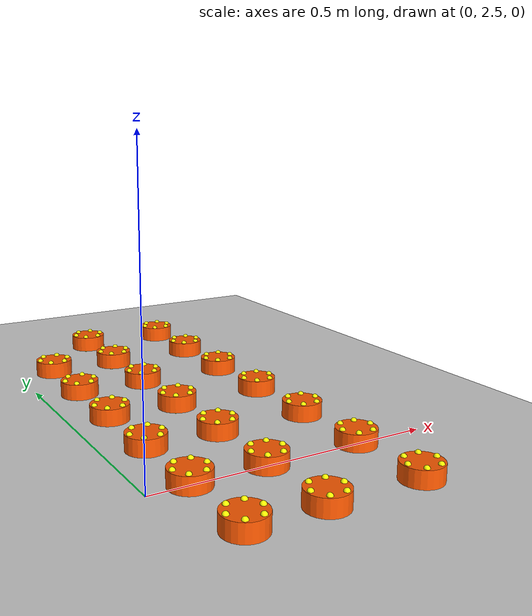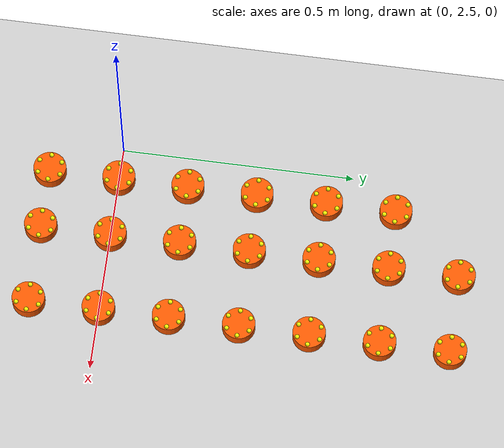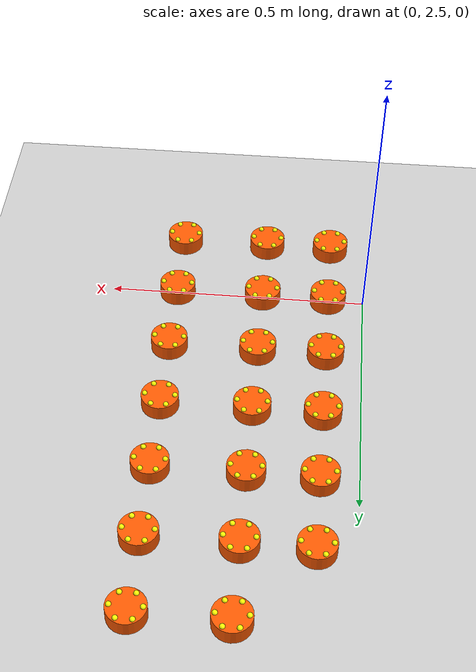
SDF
<sdf version="1.4">
 <world name="LLSF">
  <physics type="ode">
   <max_step_size>0.0015</max_step_size>
   <real_time_factor>1</real_time_factor>
   <real_time_update_rate>750</real_time_update_rate>
  </physics>
  <include><uri>model://ground_plane</uri></include>
  <include><uri>model://sun</uri></include>
  <include><name>Puck0</name><uri>model://puck</uri><pose>0.37 2.35 0 0 0 0</pose></include>
  <include><name>Puck1</name><uri>model://puck</uri><pose>0.37 2.50 0 0 0 0</pose></include>
  <include><name>Puck2</name><uri>model://puck</uri><pose>0.37 2.65 0 0 0 0</pose></include>
  <include><name>Puck3</name><uri>model://puck</uri><pose>0.37 2.80 0 0 0 0</pose></include>
  <include><name>Puck4</name><uri>model://puck</uri><pose>0.37 2.95 0 0 0 0</pose></include>
  <include><name>Puck5</name><uri>model://puck</uri><pose>0.37 3.10 0 0 0 0</pose></include>
  <include><name>Puck6</name><uri>model://puck</uri><pose>0.37 3.25 0 0 0 0</pose></include>
  <include><name>Puck7</name><uri>model://puck</uri><pose>0.2 2.35 0 0 0 0</pose></include>
  <include><name>Puck8</name><uri>model://puck</uri><pose>0.2 2.50 0 0 0 0</pose></include>
  <include><name>Puck9</name><uri>model://puck</uri><pose>0.2 2.65 0 0 0 0</pose></include>
  <include><name>Puck10</name><uri>model://puck</uri><pose>0.2 2.80 0 0 0 0</pose></include>
  <include><name>Puck11</name><uri>model://puck</uri><pose>0.2 2.95 0 0 0 0</pose></include>
  <include><name>Puck12</name><uri>model://puck</uri><pose>0.2 3.10 0 0 0 0</pose></include>
  <include><name>Puck13</name><uri>model://puck</uri><pose>0.2 3.25 0 0 0 0</pose></include>
  <include><name>Puck14</name><uri>model://puck</uri><pose>0.07 2.35 0 0 0 0</pose></include>
  <include><name>Puck15</name><uri>model://puck</uri><pose>0.07 2.50 0 0 0 0</pose></include>
  <include><name>Puck16</name><uri>model://puck</uri><pose>0.07 2.65 0 0 0 0</pose></include>
  <include><name>Puck17</name><uri>model://puck</uri><pose>0.07 2.80 0 0 0 0</pose></include>
  <include><name>Puck18</name><uri>model://puck</uri><pose>0.07 2.95 0 0 0 0</pose></include>
  <include><name>Puck19</name><uri>model://puck</uri><pose>0.07 3.10 0 0 0 0</pose></include>
  <plugin name="world" filename="libllsf.so"/>
 </world>
</sdf>

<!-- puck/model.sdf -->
<sdf version="1.4">
  <model name="puck">
    <static>false</static>
    <link name="cylinder">
      <pose>0 0 0.015 0 0 0 </pose>
      <gravity>true</gravity>
      <inertial>
        <mass>50</mass>
      </inertial>
      <collision name="cylinder_collision">
        <geometry>
          <cylinder>
            <radius>0.0375</radius>
	    <length>0.03</length>
          </cylinder>
        </geometry>
	<surface>
	  <friction>
	    <ode>
	      <mu>1.0</mu>
              <mu2>1.0</mu2>
              <slip1>0.0</slip1>
              <slip2>0.0</slip2>
	    </ode>
	  </friction>
	</surface>
      </collision>
      <collision name="top_collision">
        <geometry>
          <box>
	    <size>0.053 0.053 0.03</size>
          </box>
        </geometry>
      </collision>
      <visual name="cylinder_visual">
        <cast_shadows>false</cast_shadows>
        <geometry>
          <cylinder>
            <radius>0.035</radius>
	    <length>0.03</length>
          </cylinder>
        </geometry>
	<material>
	  <ambient>1.0 0.35 0.0 1</ambient>
	  <diffuse>1.0 0.35 0.0 1</diffuse>
	</material>
      </visual>
      <visual name="noppel_up_0">
	<pose>0.028 0 0.015 0 0 0 </pose>
        <cast_shadows>false</cast_shadows>
        <geometry>
          <sphere>
            <radius>0.005</radius>
          </sphere>
        </geometry>
	<material>
	  <ambient>1.0 1.0 0.0 1</ambient>
	  <diffuse>1.0 1.0 0.0 1</diffuse>
	</material>
      </visual>
      <visual name="noppel_up_1">
	<pose>0.014 0.024 0.015 0 0 0 </pose>
        <cast_shadows>false</cast_shadows>
        <geometry>
          <sphere>
            <radius>0.005</radius>
          </sphere>
        </geometry>
	<material>
	  <ambient>1.0 1.0 0.0 1</ambient>
	  <diffuse>1.0 1.0 0.0 1</diffuse>
	</material>
      </visual>
      <visual name="noppel_up_2">
	<pose>-0.014 0.024 0.015 0 0 0 </pose>
        <cast_shadows>false</cast_shadows>
        <geometry>
          <sphere>
            <radius>0.005</radius>
          </sphere>
        </geometry>
	<material>
	  <ambient>1.0 1.0 0.0 1</ambient>
	  <diffuse>1.0 1.0 0.0 1</diffuse>
	</material>
      </visual>
      <visual name="noppel_up_3">
	<pose>-0.028 0 0.015 0 0 0 </pose>
        <cast_shadows>false</cast_shadows>
        <geometry>
          <sphere>
            <radius>0.005</radius>
          </sphere>
        </geometry>
	<material>
	  <ambient>1.0 1.0 0.0 1</ambient>
	  <diffuse>1.0 1.0 0.0 1</diffuse>
	</material>
      </visual>
      <visual name="noppel_up_4">
	<pose>-0.014 -0.024 0.015 0 0 0 </pose>
        <cast_shadows>false</cast_shadows>
        <geometry>
          <sphere>
            <radius>0.005</radius>
          </sphere>
        </geometry>
	<material>
	  <ambient>1.0 1.0 0.0 1</ambient>
	  <diffuse>1.0 1.0 0.0 1</diffuse>
	</material>
      </visual>
      <visual name="noppel_up_5">
	<pose>0.014 -0.024 0.015 0 0 0 </pose>
        <cast_shadows>false</cast_shadows>
        <geometry>
          <sphere>
            <radius>0.005</radius>
          </sphere>
        </geometry>
	<material>
	  <ambient>1.0 1.0 0.0 1</ambient>
	  <diffuse>1.0 1.0 0.0 1</diffuse>
	</material>
      </visual>
      <visual name="noppel_down_0">
	<pose>0.028 0 -0.015 0 0 0 </pose>
        <cast_shadows>false</cast_shadows>
        <geometry>
          <sphere>
            <radius>0.005</radius>
          </sphere>
        </geometry>
	<material>
	  <ambient>1.0 1.0 0.0 1</ambient>
	  <diffuse>1.0 1.0 0.0 1</diffuse>
	</material>
      </visual>
      <visual name="noppel_down_1">
	<pose>0.014 0.024 -0.015 0 0 0 </pose>
        <cast_shadows>false</cast_shadows>
        <geometry>
          <sphere>
            <radius>0.005</radius>
          </sphere>
        </geometry>
	<material>
	  <ambient>1.0 1.0 0.0 1</ambient>
	  <diffuse>1.0 1.0 0.0 1</diffuse>
	</material>
      </visual>
      <visual name="noppel_down_2">
	<pose>-0.014 0.024 -0.015 0 0 0 </pose>
        <cast_shadows>false</cast_shadows>
        <geometry>
          <sphere>
            <radius>0.005</radius>
          </sphere>
        </geometry>
	<material>
	  <ambient>1.0 1.0 0.0 1</ambient>
	  <diffuse>1.0 1.0 0.0 1</diffuse>
	</material>
      </visual>
      <visual name="noppel_down_3">
	<pose>-0.028 0 -0.015 0 0 0 </pose>
        <cast_shadows>false</cast_shadows>
        <geometry>
          <sphere>
            <radius>0.005</radius>
          </sphere>
        </geometry>
	<material>
	  <ambient>1.0 1.0 0.0 1</ambient>
	  <diffuse>1.0 1.0 0.0 1</diffuse>
	</material>
      </visual>
      <visual name="noppel_down_4">
	<pose>-0.014 -0.024 -0.015 0 0 0 </pose>
        <cast_shadows>false</cast_shadows>
        <geometry>
          <sphere>
            <radius>0.005</radius>
          </sphere>
        </geometry>
	<material>
	  <ambient>1.0 1.0 0.0 1</ambient>
	  <diffuse>1.0 1.0 0.0 1</diffuse>
	</material>
      </visual>
      <visual name="noppel_down_5">
	<pose>0.014 -0.024 -0.015 0 0 0 </pose>
        <cast_shadows>false</cast_shadows>
        <geometry>
          <sphere>
            <radius>0.005</radius>
          </sphere>
        </geometry>
	<material>
	  <ambient>1.0 1.0 0.0 1</ambient>
	  <diffuse>1.0 1.0 0.0 1</diffuse>
	</material>
      </visual>
    </link>
  </model>
</sdf>
